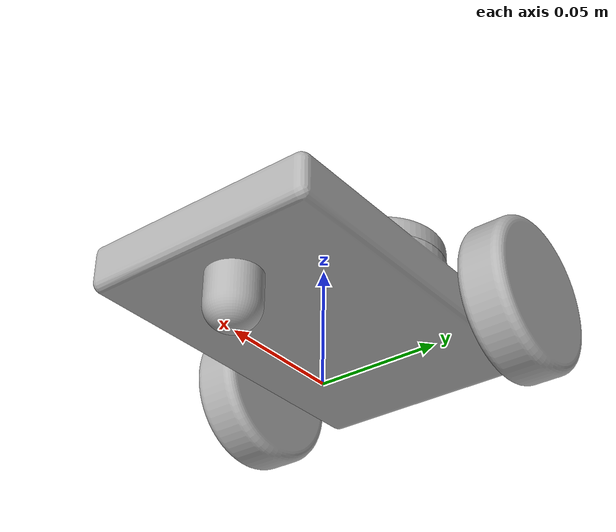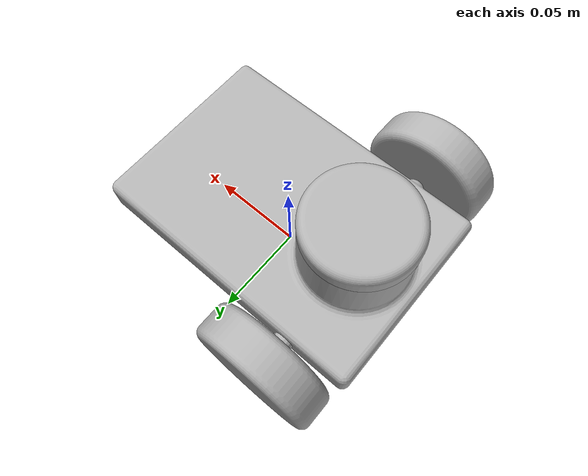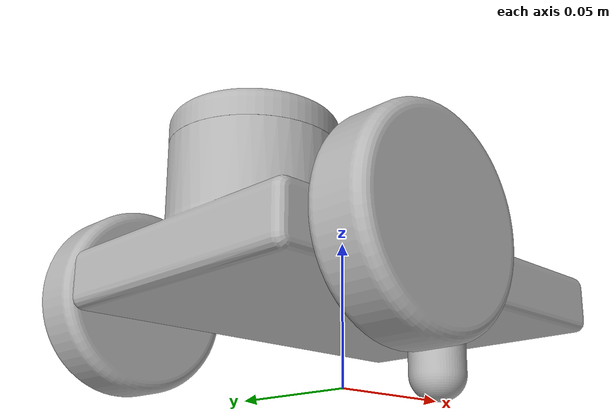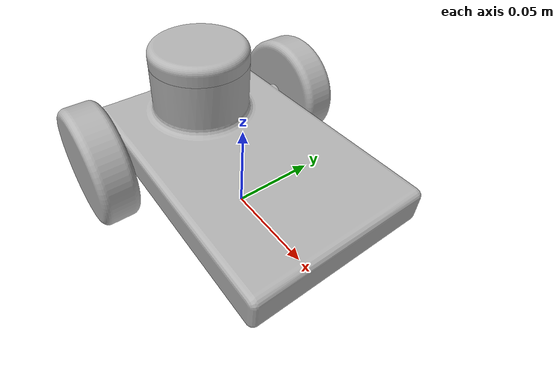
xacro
<?xml version="1.0" ?>
<robot name="ROS_urdf_model" xmlns:xacro="http://www.ros.org/wiki/xacro">

<xacro:include filename="$(find ROS_urdf_model_description)/urdf/materials.xacro" />
<xacro:include filename="$(find ROS_urdf_model_description)/urdf/ROS_urdf_model.trans" />
<xacro:include filename="$(find ROS_urdf_model_description)/urdf/ROS_urdf_model.gazebo" />
<link name="base_link">
  <inertial>
    <origin rpy="0 0 0" xyz="-0.007993797844687926 -6.445626853258027e-05 0.03733982089504857"/>
    <mass value="0.3917130898872576"/>
    <inertia ixx="0.00033" ixy="0.0" ixz="6.2e-05" iyy="0.000755" iyz="-0.0" izz="0.000977"/>
  </inertial>
  <visual>
    <origin rpy="0 0 0" xyz="0 0 0"/>
    <geometry>
      <mesh filename="package://ROS_urdf_model_description/meshes/base_link.stl" scale="0.001 0.001 0.001"/>
    </geometry>
    <material name="silver"/>
  </visual>
  <collision>
    <origin rpy="0 0 0" xyz="0 0 0"/>
    <geometry>
      <mesh filename="package://ROS_urdf_model_description/meshes/base_link.stl" scale="0.001 0.001 0.001"/>
    </geometry>
  </collision>
</link>

<link name="r_wheel_1_1">
  <inertial>
    <origin rpy="0 0 0" xyz="-5.42546823925627e-08 -0.010000000000000002 5.5154309772098564e-08"/>
    <mass value="0.06045221165837054"/>
    <inertia ixx="1.8e-05" ixy="-0.0" ixz="-0.0" iyy="3.1e-05" iyz="0.0" izz="1.8e-05"/>
  </inertial>
  <visual>
    <origin rpy="0 0 0" xyz="0.04 0.055 -0.032502"/>
    <geometry>
      <mesh filename="package://ROS_urdf_model_description/meshes/r_wheel_1_1.stl" scale="0.001 0.001 0.001"/>
    </geometry>
    <material name="silver"/>
  </visual>
  <collision>
    <origin rpy="0 0 0" xyz="0.04 0.055 -0.032502"/>
    <geometry>
      <mesh filename="package://ROS_urdf_model_description/meshes/r_wheel_1_1.stl" scale="0.001 0.001 0.001"/>
    </geometry>
  </collision>
</link>

<link name="l_wheel_1_1">
  <inertial>
    <origin rpy="0 0 0" xyz="-1.3877787807814457e-17 0.010000000000000002 -6.938893903907228e-18"/>
    <mass value="0.06045221165837055"/>
    <inertia ixx="1.8e-05" ixy="0.0" ixz="-0.0" iyy="3.1e-05" iyz="0.0" izz="1.8e-05"/>
  </inertial>
  <visual>
    <origin rpy="0 0 0" xyz="0.04 -0.055 -0.0325"/>
    <geometry>
      <mesh filename="package://ROS_urdf_model_description/meshes/l_wheel_1_1.stl" scale="0.001 0.001 0.001"/>
    </geometry>
    <material name="silver"/>
  </visual>
  <collision>
    <origin rpy="0 0 0" xyz="0.04 -0.055 -0.0325"/>
    <geometry>
      <mesh filename="package://ROS_urdf_model_description/meshes/l_wheel_1_1.stl" scale="0.001 0.001 0.001"/>
    </geometry>
  </collision>
</link>

<link name="Lidar_1_1">
  <inertial>
    <origin rpy="0 0 0" xyz="1.2790781041965849e-07 3.0647606140187956e-18 0.004898635646193403"/>
    <mass value="0.03060325191184998"/>
    <inertia ixx="6e-06" ixy="0.0" ixz="-0.0" iyy="6e-06" iyz="0.0" izz="1.1e-05"/>
  </inertial>
  <visual>
    <origin rpy="0 0 0" xyz="0.040656 -0.0 -0.0725"/>
    <geometry>
      <mesh filename="package://ROS_urdf_model_description/meshes/Lidar_1_1.stl" scale="0.001 0.001 0.001"/>
    </geometry>
    <material name="silver"/>
  </visual>
  <collision>
    <origin rpy="0 0 0" xyz="0.040656 -0.0 -0.0725"/>
    <geometry>
      <mesh filename="package://ROS_urdf_model_description/meshes/Lidar_1_1.stl" scale="0.001 0.001 0.001"/>
    </geometry>
  </collision>
</link>

<link name="caster_1_1">
  <inertial>
    <origin rpy="0 0 0" xyz="-0.01999999999999999 2.0599841277224584e-18 -0.009841942175861375"/>
    <mass value="0.05786195857967422"/>
    <inertia ixx="4e-06" ixy="0.0" ixz="0.0" iyy="4e-06" iyz="0.0" izz="3e-06"/>
  </inertial>
  <visual>
    <origin rpy="0 0 0" xyz="-0.071 0.0005 -0.0225"/>
    <geometry>
      <mesh filename="package://ROS_urdf_model_description/meshes/caster_1_1.stl" scale="0.001 0.001 0.001"/>
    </geometry>
    <material name="silver"/>
  </visual>
  <collision>
    <origin rpy="0 0 0" xyz="-0.071 0.0005 -0.0225"/>
    <geometry>
      <mesh filename="package://ROS_urdf_model_description/meshes/caster_1_1.stl" scale="0.001 0.001 0.001"/>
    </geometry>
  </collision>
</link>

<joint name="Rev8" type="continuous">
  <origin rpy="0 0 0" xyz="-0.04 -0.055 0.032502"/>
  <parent link="base_link"/>
  <child link="r_wheel_1_1"/>
  <axis xyz="0.0 1.0 0.0"/>
</joint>

<joint name="Rev9" type="continuous">
  <origin rpy="0 0 0" xyz="-0.04 0.055 0.0325"/>
  <parent link="base_link"/>
  <child link="l_wheel_1_1"/>
  <axis xyz="0.0 1.0 0.0"/>
</joint>

<joint name="Rigid10" type="fixed">
  <origin rpy="0 0 0" xyz="-0.040656 0.0 0.0725"/>
  <parent link="base_link"/>
  <child link="Lidar_1_1"/>
</joint>

<joint name="Rigid11" type="fixed">
  <origin rpy="0 0 0" xyz="0.071 -0.0005 0.0225"/>
  <parent link="base_link"/>
  <child link="caster_1_1"/>
</joint>

</robot>

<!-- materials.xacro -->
<robot name="ROS_urdf_model" xmlns:xacro="http://www.ros.org/wiki/xacro" >

<material name="silver">
  <color rgba="0.700 0.700 0.700 1.000"/>
</material>

</robot>

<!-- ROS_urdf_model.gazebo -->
<robot name="ROS_urdf_model" xmlns:xacro="http://www.ros.org/wiki/xacro" >

<xacro:property name="body_color" value="Gazebo/Silver" />

<gazebo>
  <plugin filename="libgazebo_ros_control.so" name="control"/>
</gazebo>
<gazebo reference="base_link">
  <material>${body_color}</material>
  <mu1>0.2</mu1>
  <mu2>0.2</mu2>
  <selfCollide>true</selfCollide>
  <gravity>true</gravity>
</gazebo>

<gazebo reference="r_wheel_1_1">
  <material>${body_color}</material>
  <mu1>100</mu1>
  <mu2>100</mu2>
  <selfCollide>true</selfCollide>
</gazebo>

<gazebo reference="l_wheel_1_1">
  <material>${body_color}</material>
  <mu1>100</mu1>
  <mu2>100</mu2>
  <selfCollide>true</selfCollide>
</gazebo>

<gazebo reference="Lidar_1_1">
  <material>${body_color}</material>
  <mu1>0.2</mu1>
  <mu2>0.2</mu2>
  <selfCollide>true</selfCollide>
</gazebo>

<gazebo reference="caster_1_1">
  <material>${body_color}</material>
  <mu1>0.2</mu1>
  <mu2>0.2</mu2>
  <selfCollide>true</selfCollide>
</gazebo>

<gazebo>
  <plugin name="differential_drive_controller" filename="libgazebo_ros_diff_drive.so">

    <!-- Plugin update rate in Hz -->
    <updateRate>10</updateRate>

    <!-- Name of left joint, defaults to `left_joint` -->
    <leftJoint>Rev8</leftJoint>

    <!-- Name of right joint, defaults to `right_joint` -->
    <rightJoint>Rev9</rightJoint>

    <!-- The distance from the center of one wheel to the other, in meters, defaults to 0.34 m -->
    <wheelSeparation>0.130</wheelSeparation>

    <!-- Diameter of the wheels, in meters, defaults to 0.15 m -->
    <wheelDiameter>0.650</wheelDiameter>

    <!-- Wheel acceleration, in rad/s^2, defaults to 0.0 rad/s^2 -->
    <wheelAcceleration>1.0</wheelAcceleration>

    <!-- Maximum torque which the wheels can produce, in Nm, defaults to 5 Nm -->
    <wheelTorque>20</wheelTorque>

    <!-- Topic to receive geometry_msgs/Twist message commands, defaults to `cmd_vel` -->
    <commandTopic>cmd_vel</commandTopic>

    <!-- Topic to publish nav_msgs/Odometry messages, defaults to `odom` -->
    <odometryTopic>odom</odometryTopic>

    <!-- Odometry frame, defaults to `odom` -->
    <odometryFrame>odom</odometryFrame>

    <!-- Robot frame to calculate odometry from, defaults to `base_footprint` -->
    <robotBaseFrame>base_link</robotBaseFrame>

    <!-- Odometry source, 0 for ENCODER, 1 for WORLD, defaults to WORLD -->
    <odometrySource>1</odometrySource>

    <!-- Set to true to publish transforms for the wheel links, defaults to false -->
    <publishWheelTF>true</publishWheelTF>

    <!-- Set to true to publish transforms for the odometry, defaults to true -->
    <publishOdom>true</publishOdom>

    <!-- Set to true to publish sensor_msgs/JointState on /joint_states for the wheel joints, defaults to false -->
    <publishWheelJointState>true</publishWheelJointState>

    <!-- Set to true to swap right and left wheels, defaults to true -->
    <legacyMode>false</legacyMode>
  </plugin>
</gazebo>

<!-- hokuyo -->
  <gazebo reference="Lidar_1_1">
    <sensor type="ray" name="Lidar_1_1">
      <pose>0 0 0 0 0 0</pose>
      <visualize>true</visualize>
      <update_rate>40</update_rate>
      <ray>
        <scan>
          <horizontal>
            <samples>720</samples>
            <resolution>1</resolution>
            <min_angle>-3.14</min_angle>   <!--for a 360 degree view we change to -180 to 180 radians-->
            <max_angle>3.14</max_angle>
          </horizontal>
        </scan>
        <range>
          <min>0.10</min>
          <max>30.0</max>
          <resolution>0.01</resolution>
        </range>
        <noise>
          <type>gaussian</type>
          <mean>0.0</mean>
          <stddev>0.01</stddev>
        </noise>
      </ray>
      <plugin name="gazebo_ros_head_hokuyo_controller" filename="libgazebo_ros_laser.so">
        <topicName>/scan</topicName>
        <frameName>Lidar_1_1</frameName>
      </plugin>
    </sensor>
  </gazebo>

</robot>
